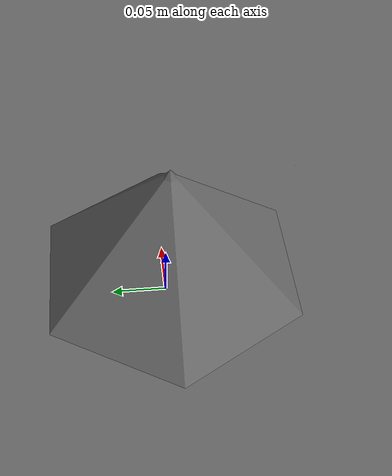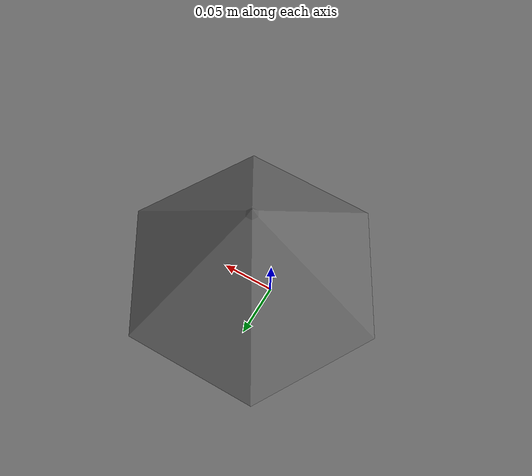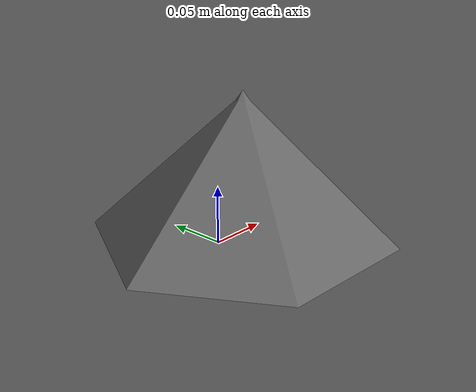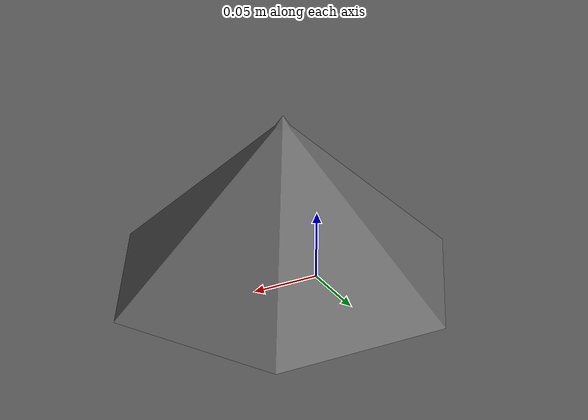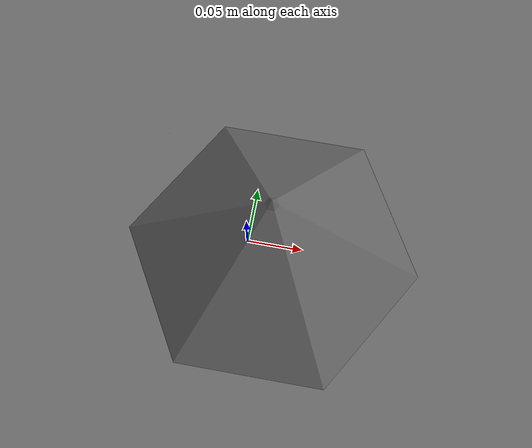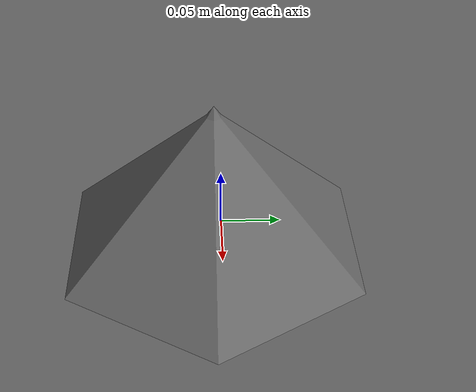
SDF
<?xml version="1.0" ?>
<sdf version="1.5">
    <world name="default">
    <scene>
        <origin_visual>0</origin_visual>
        <grid>0</grid>
        <sky><time>12</time></sky>
    </scene>
    <gui>
        <plugin name="interactive-evolution" filename="libtolinteractiveevolution.so" />
    </gui>
    <physics type="ode">
      <ode>
        <constraints>
          <!-- Simulator.cpp -->
          <erp>0.5</erp>
          <cfm>10e-6</cfm>
        </constraints>
      </ode>
    </physics>

    <!-- A global light source -->
    <include>
      <uri>model://sun</uri>
    </include>
    <include>
      <uri>model://tol_env</uri>
    </include>

    <plugin name="tol-control" filename="libtolworldcontrol.so" />
  </world>
</sdf>

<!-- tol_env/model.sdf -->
<sdf version="1.5">
<!-- Test mesh -->
  <model name="tol_env">
    <static>true</static>
    <pose>0 0 0 1.57 0 0</pose>
    <link name="ground">
      <collision name="ground_col">
        <geometry>
          <mesh>
            <uri>model://tol_env/meshes/arena_hi_walls.dae</uri>
            <scale>20.0 20.0 20.0</scale>
          </mesh>
        </geometry>
      </collision>
      <visual name="ground_vis">
        <cast_shadows>false</cast_shadows>
        <geometry>
          <mesh>
            <uri>model://tol_env/meshes/arena_low_walls.dae</uri>
            <scale>20.0 20.0 20.0</scale>
          </mesh>
        </geometry>
      </visual>
    </link>

    <link name="clinic">
      <collision name="clinic_col">
        <geometry>
          <mesh>
            <uri>model://tol_env/meshes/birth_clinic2.dae</uri>
            <scale>5 6 5</scale>
          </mesh>

        </geometry>
      </collision>
      <visual name="clinic_vis">
        <cast_shadows>false</cast_shadows>
        <geometry>
          <mesh>
            <uri>model://tol_env/meshes/birth_clinic2.dae</uri>
            <scale>5 6 5</scale>
          </mesh>

        </geometry>
      </visual>
    </link>
  </model>
<!-- END Test mesh -->
</sdf>
